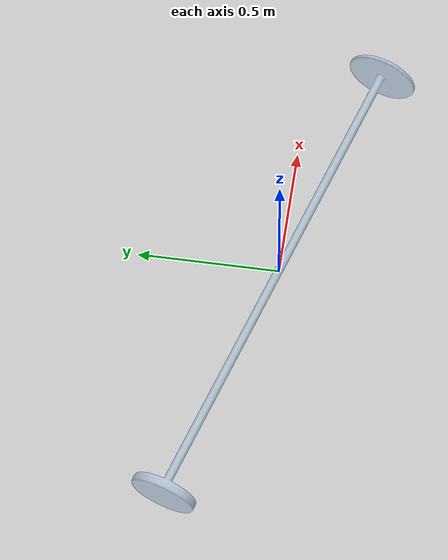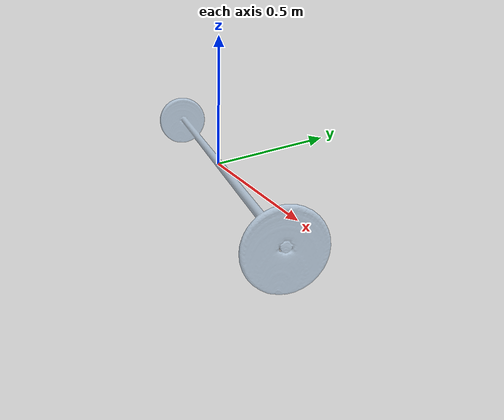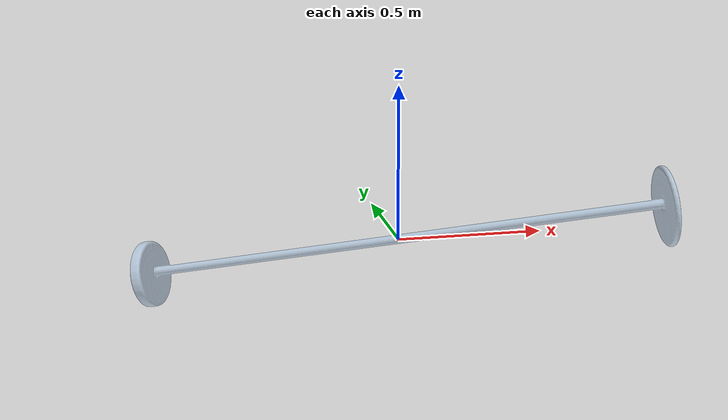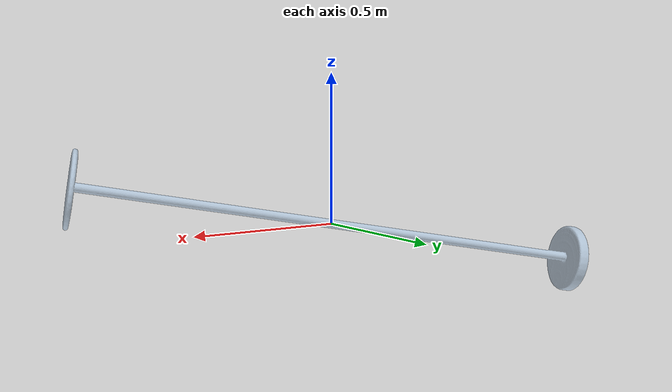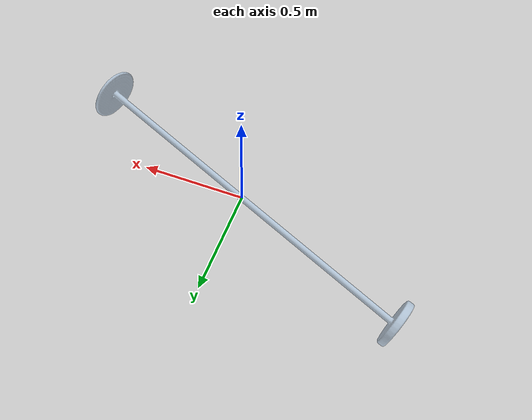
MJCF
<mujoco model="floorlamp">
    <compiler meshdir="./"/>

    <default>
        <geom friction="0.9 0.5 0.5" rgba="0.7 0.8 0.9 0.7"/>
        <joint damping="0.5"/>
    </default>

    <asset>
        <mesh name="floorlamp_mesh" file="floorlamp.obj" scale="1 1 1"/>
    </asset>

    <worldbody>
        <body name="floorlamp_link">
            <inertial pos="0 0 0" mass="0.1" diaginertia="0.002 0.002 0.002"/>
            <geom name="floorlamp" type="mesh" mesh="floorlamp_mesh"
                  pos="0 0 0" quat="1 0 0 0"
                  rgba="0.7 0.8 0.9 0.7"
                  friction="0.9 0.5 0.5"
                  solref="0.02 1"
                  solimp="0.9 0.95 0.001"/>
        </body>
    </worldbody>
</mujoco>
